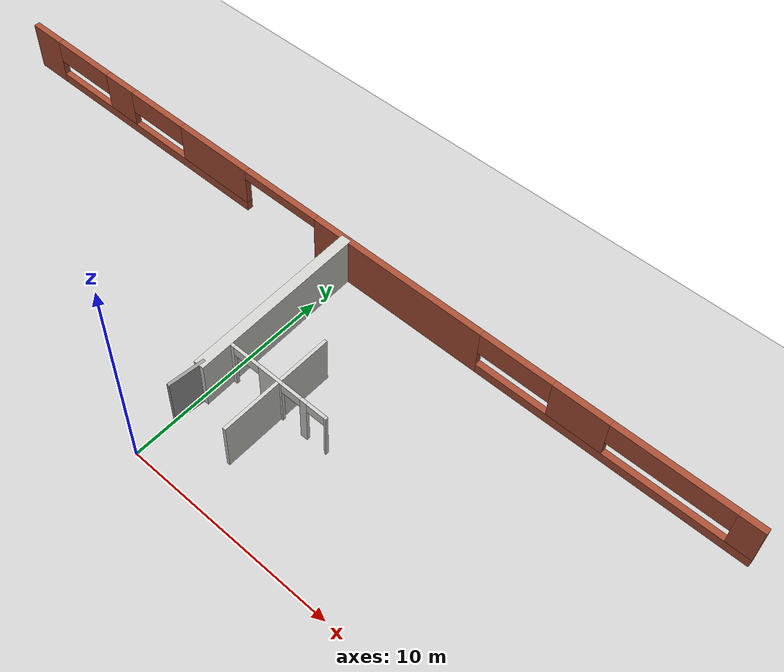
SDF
<sdf version="1.6">
 <world name="default">
  <model name="ground_plane">
   <static>1</static>
   <link name="link">
    <collision name="collision">
     <geometry><plane><normal>0 0 1</normal><size>100 100</size></plane></geometry>
     <surface><friction><ode><mu>100</mu><mu2>50</mu2></ode></friction></surface>
    </collision>
    <visual name="visual">
     <cast_shadows>0</cast_shadows>
     <geometry><plane><normal>0 0 1</normal><size>100 100</size></plane></geometry>
     <material>
      <script><uri>file://media/materials/scripts/gazebo.material</uri><name>Gazebo/Grey</name></script>
     </material>
    </visual>
   </link>
  </model>
  <model name="Building">
   <pose>-1.26631 -0.299272 0 0 -0 0</pose>
   <link name="Wall_18">
    <pose>0.905623 12.3125 0 0 -0 0</pose>
    <visual name="Wall_18_Visual_0">
     <pose>-19.2672 0 1.25 0 -0 0</pose>
     <geometry><box><size>1.86558 0.3 2.5</size></box></geometry>
     <material>
      <script><uri>file://media/materials/scripts/gazebo.material</uri><name>Gazebo/Bricks</name></script>
      <ambient>1 1 1 1</ambient>
     </material>
     <meta><layer>0</layer></meta>
    </visual>
    <collision name="Wall_18_Collision_0">
     <geometry><box><size>1.86558 0.3 2.5</size></box></geometry>
     <pose>-19.2672 0 1.25 0 -0 0</pose>
    </collision>
    <visual name="Wall_18_Visual_1">
     <pose>3.08951 0 1.25 0 -0 0</pose>
     <geometry><box><size>8.93043 0.3 2.5</size></box></geometry>
     <material>
      <script><uri>file://media/materials/scripts/gazebo.material</uri><name>Gazebo/Bricks</name></script>
      <ambient>1 1 1 1</ambient>
     </material>
     <meta><layer>0</layer></meta>
    </visual>
    <collision name="Wall_18_Collision_1">
     <geometry><box><size>8.93043 0.3 2.5</size></box></geometry>
     <pose>3.08951 0 1.25 0 -0 0</pose>
    </collision>
    <visual name="Wall_18_Visual_2">
     <pose>-11.9358 0 0.25 0 -0 0</pose>
     <geometry><box><size>12.7972 0.3 0.5</size></box></geometry>
     <material>
      <script><uri>file://media/materials/scripts/gazebo.material</uri><name>Gazebo/Bricks</name></script>
      <ambient>1 1 1 1</ambient>
     </material>
     <meta><layer>0</layer></meta>
    </visual>
    <collision name="Wall_18_Collision_2">
     <geometry><box><size>12.7972 0.3 0.5</size></box></geometry>
     <pose>-11.9358 0 0.25 0 -0 0</pose>
    </collision>
    <visual name="Wall_18_Visual_3">
     <pose>13.8774 0 0.25 0 -0 0</pose>
     <geometry><box><size>12.6453 0.3 0.5</size></box></geometry>
     <material>
      <script><uri>file://media/materials/scripts/gazebo.material</uri><name>Gazebo/Bricks</name></script>
      <ambient>1 1 1 1</ambient>
     </material>
     <meta><layer>0</layer></meta>
    </visual>
    <collision name="Wall_18_Collision_3">
     <geometry><box><size>12.6453 0.3 0.5</size></box></geometry>
     <pose>13.8774 0 0.25 0 -0 0</pose>
    </collision>
    <visual name="Wall_18_Visual_4">
     <pose>-13.9321 0 1.5 0 -0 0</pose>
     <geometry><box><size>1.8072 0.3 2</size></box></geometry>
     <material>
      <script><uri>file://media/materials/scripts/gazebo.material</uri><name>Gazebo/Bricks</name></script>
      <ambient>1 1 1 1</ambient>
     </material>
     <meta><layer>0</layer></meta>
    </visual>
    <collision name="Wall_18_Collision_4">
     <geometry><box><size>1.8072 0.3 2</size></box></geometry>
     <pose>-13.9321 0 1.5 0 -0 0</pose>
    </collision>
    <visual name="Wall_18_Visual_5">
     <pose>-7.60468 0 1.5 0 -0 0</pose>
     <geometry><box><size>4.135 0.3 2</size></box></geometry>
     <material>
      <script><uri>file://media/materials/scripts/gazebo.material</uri><name>Gazebo/Bricks</name></script>
      <ambient>1 1 1 1</ambient>
     </material>
     <meta><layer>0</layer></meta>
    </visual>
    <collision name="Wall_18_Collision_5">
     <geometry><box><size>4.135 0.3 2</size></box></geometry>
     <pose>-7.60468 0 1.5 0 -0 0</pose>
    </collision>
    <visual name="Wall_18_Visual_6">
     <pose>-7.60468 0 1.5 0 -0 0</pose>
     <geometry><box><size>4.135 0.3 2</size></box></geometry>
     <material>
      <script><uri>file://media/materials/scripts/gazebo.material</uri><name>Gazebo/Bricks</name></script>
      <ambient>1 1 1 1</ambient>
     </material>
     <meta><layer>0</layer></meta>
    </visual>
    <collision name="Wall_18_Collision_6">
     <geometry><box><size>4.135 0.3 2</size></box></geometry>
     <pose>-7.60468 0 1.5 0 -0 0</pose>
    </collision>
    <visual name="Wall_18_Visual_7">
     <pose>12.3457 0 1.5 0 -0 0</pose>
     <geometry><box><size>2.62855 0.3 2</size></box></geometry>
     <material>
      <script><uri>file://media/materials/scripts/gazebo.material</uri><name>Gazebo/Bricks</name></script>
      <ambient>1 1 1 1</ambient>
     </material>
     <meta><layer>0</layer></meta>
    </visual>
    <collision name="Wall_18_Collision_7">
     <geometry><box><size>2.62855 0.3 2</size></box></geometry>
     <pose>12.3457 0 1.5 0 -0 0</pose>
    </collision>
    <visual name="Wall_18_Visual_8">
     <pose>19.6307 0 1.5 0 -0 0</pose>
     <geometry><box><size>1.13859 0.3 2</size></box></geometry>
     <material>
      <script><uri>file://media/materials/scripts/gazebo.material</uri><name>Gazebo/Bricks</name></script>
      <ambient>1 1 1 1</ambient>
     </material>
     <meta><layer>0</layer></meta>
    </visual>
    <collision name="Wall_18_Collision_8">
     <geometry><box><size>1.13859 0.3 2</size></box></geometry>
     <pose>19.6307 0 1.5 0 -0 0</pose>
    </collision>
    <visual name="Wall_18_Visual_9">
     <pose>-16.5851 0 1.9 0 -0 0</pose>
     <geometry><box><size>3.49867 0.3 1.2</size></box></geometry>
     <material>
      <script><uri>file://media/materials/scripts/gazebo.material</uri><name>Gazebo/Bricks</name></script>
      <ambient>1 1 1 1</ambient>
     </material>
     <meta><layer>0</layer></meta>
    </visual>
    <collision name="Wall_18_Collision_9">
     <geometry><box><size>3.49867 0.3 1.2</size></box></geometry>
     <pose>-16.5851 0 1.9 0 -0 0</pose>
    </collision>
    <visual name="Wall_18_Visual_10">
     <pose>9.29306 0 1.9 0 -0 0</pose>
     <geometry><box><size>3.47667 0.3 1.2</size></box></geometry>
     <material>
      <script><uri>file://media/materials/scripts/gazebo.material</uri><name>Gazebo/Bricks</name></script>
      <ambient>1 1 1 1</ambient>
     </material>
     <meta><layer>0</layer></meta>
    </visual>
    <collision name="Wall_18_Collision_10">
     <geometry><box><size>3.47667 0.3 1.2</size></box></geometry>
     <pose>9.29306 0 1.9 0 -0 0</pose>
    </collision>
    <visual name="Wall_18_Visual_11">
     <pose>-11.3504 0 1.9 0 -0 0</pose>
     <geometry><box><size>3.35637 0.3 1.2</size></box></geometry>
     <material>
      <script><uri>file://media/materials/scripts/gazebo.material</uri><name>Gazebo/Bricks</name></script>
      <ambient>1 1 1 1</ambient>
     </material>
     <meta><layer>0</layer></meta>
    </visual>
    <collision name="Wall_18_Collision_11">
     <geometry><box><size>3.35637 0.3 1.2</size></box></geometry>
     <pose>-11.3504 0 1.9 0 -0 0</pose>
    </collision>
    <visual name="Wall_18_Visual_12">
     <pose>16.3607 0 1.9 0 -0 0</pose>
     <geometry><box><size>5.40147 0.3 1.2</size></box></geometry>
     <material>
      <script><uri>file://media/materials/scripts/gazebo.material</uri><name>Gazebo/Bricks</name></script>
      <ambient>1 1 1 1</ambient>
     </material>
     <meta><layer>0</layer></meta>
    </visual>
    <collision name="Wall_18_Collision_12">
     <geometry><box><size>5.40147 0.3 1.2</size></box></geometry>
     <pose>16.3607 0 1.9 0 -0 0</pose>
    </collision>
    <visual name="Wall_18_Visual_13">
     <pose>-3.45644 0 2.25 0 -0 0</pose>
     <geometry><box><size>4.16148 0.3 0.5</size></box></geometry>
     <material>
      <script><uri>file://media/materials/scripts/gazebo.material</uri><name>Gazebo/Bricks</name></script>
      <ambient>1 1 1 1</ambient>
     </material>
     <meta><layer>0</layer></meta>
    </visual>
    <collision name="Wall_18_Collision_13">
     <geometry><box><size>4.16148 0.3 0.5</size></box></geometry>
     <pose>-3.45644 0 2.25 0 -0 0</pose>
    </collision>
    <visual name="Wall_18_Visual_14">
     <pose>-3.45644 0 2.25 0 -0 0</pose>
     <geometry><box><size>4.16148 0.3 0.5</size></box></geometry>
     <material>
      <script><uri>file://media/materials/scripts/gazebo.material</uri><name>Gazebo/Bricks</name></script>
      <ambient>1 1 1 1</ambient>
     </material>
     <meta><layer>0</layer></meta>
    </visual>
    <collision name="Wall_18_Collision_14">
     <geometry><box><size>4.16148 0.3 0.5</size></box></geometry>
     <pose>-3.45644 0 2.25 0 -0 0</pose>
    </collision>
   </link>
   <link name="Wall_48">
    <collision name="Wall_48_Collision">
     <geometry><box><size>8.59954 0.5 2.5</size></box></geometry>
     <pose>0 0 1.25 0 -0 0</pose>
    </collision>
    <visual name="Wall_48_Visual">
     <pose>0 0 1.25 0 -0 0</pose>
     <geometry><box><size>8.59954 0.5 2.5</size></box></geometry>
     <material>
      <script><uri>file://media/materials/scripts/gazebo.material</uri><name>Gazebo/CeilingTiled</name></script>
      <ambient>1 1 1 1</ambient>
     </material>
     <meta><layer>0</layer></meta>
    </visual>
    <pose>1.325 8.04773 0 0 -0 1.5899</pose>
   </link>
   <link name="Wall_76">
    <collision name="Wall_76_Collision">
     <geometry><box><size>1.75952 0.15 2.5</size></box></geometry>
     <pose>0 0 1.25 0 -0 0</pose>
    </collision>
    <visual name="Wall_76_Visual">
     <pose>0 0 1.25 0 -0 0</pose>
     <geometry><box><size>1.75952 0.15 2.5</size></box></geometry>
     <material>
      <script><uri>file://media/materials/scripts/gazebo.material</uri><name>Gazebo/Grey</name></script>
      <ambient>1 1 1 1</ambient>
     </material>
     <meta><layer>0</layer></meta>
    </visual>
    <pose>1.32499 3.19767 0 0 0 -1.66712</pose>
   </link>
   <link name="Wall_84">
    <collision name="Wall_84_Collision">
     <geometry><box><size>5.5 0.15 2.5</size></box></geometry>
     <pose>0 0 1.25 0 -0 0</pose>
    </collision>
    <visual name="Wall_84_Visual">
     <pose>0 0 1.25 0 -0 0</pose>
     <geometry><box><size>5.5 0.15 2.5</size></box></geometry>
     <material>
      <script><uri>file://media/materials/scripts/gazebo.material</uri><name>Gazebo/CeilingTiled</name></script>
      <ambient>1 1 1 1</ambient>
     </material>
     <meta><layer>0</layer></meta>
    </visual>
    <pose>4.2046 5.15734 0 0 0 -1.5708</pose>
   </link>
   <link name="Wall_86">
    <pose>3.93226 5.30604 0 0 -0 0</pose>
    <visual name="Wall_86_Visual_0">
     <pose>-2.44464 0 1.25 0 -0 0</pose>
     <geometry><box><size>0.610725 0.15 2.5</size></box></geometry>
     <material>
      <script><uri>file://media/materials/scripts/gazebo.material</uri><name>Gazebo/CeilingTiled</name></script>
      <ambient>1 1 1 1</ambient>
     </material>
     <meta><layer>0</layer></meta>
    </visual>
    <collision name="Wall_86_Collision_0">
     <geometry><box><size>0.610725 0.15 2.5</size></box></geometry>
     <pose>-2.44464 0 1.25 0 -0 0</pose>
    </collision>
    <visual name="Wall_86_Visual_1">
     <pose>-0.167477 0 1.25 0 -0 0</pose>
     <geometry><box><size>1.21504 0.15 2.5</size></box></geometry>
     <material>
      <script><uri>file://media/materials/scripts/gazebo.material</uri><name>Gazebo/CeilingTiled</name></script>
      <ambient>1 1 1 1</ambient>
     </material>
     <meta><layer>0</layer></meta>
    </visual>
    <collision name="Wall_86_Collision_1">
     <geometry><box><size>1.21504 0.15 2.5</size></box></geometry>
     <pose>-0.167477 0 1.25 0 -0 0</pose>
    </collision>
    <visual name="Wall_86_Visual_2">
     <pose>1.58216 0 1.25 0 -0 0</pose>
     <geometry><box><size>0.34667 0.15 2.5</size></box></geometry>
     <material>
      <script><uri>file://media/materials/scripts/gazebo.material</uri><name>Gazebo/CeilingTiled</name></script>
      <ambient>1 1 1 1</ambient>
     </material>
     <meta><layer>0</layer></meta>
    </visual>
    <collision name="Wall_86_Collision_2">
     <geometry><box><size>0.34667 0.15 2.5</size></box></geometry>
     <pose>1.58216 0 1.25 0 -0 0</pose>
    </collision>
    <visual name="Wall_86_Visual_3">
     <pose>2.70275 0 1.25 0 -0 0</pose>
     <geometry><box><size>0.094504 0.15 2.5</size></box></geometry>
     <material>
      <script><uri>file://media/materials/scripts/gazebo.material</uri><name>Gazebo/CeilingTiled</name></script>
      <ambient>1 1 1 1</ambient>
     </material>
     <meta><layer>0</layer></meta>
    </visual>
    <collision name="Wall_86_Collision_3">
     <geometry><box><size>0.094504 0.15 2.5</size></box></geometry>
     <pose>2.70275 0 1.25 0 -0 0</pose>
    </collision>
    <visual name="Wall_86_Visual_4">
     <pose>-1.45714 0 2.25 0 -0 0</pose>
     <geometry><box><size>1.36428 0.15 0.5</size></box></geometry>
     <material>
      <script><uri>file://media/materials/scripts/gazebo.material</uri><name>Gazebo/CeilingTiled</name></script>
      <ambient>1 1 1 1</ambient>
     </material>
     <meta><layer>0</layer></meta>
    </visual>
    <collision name="Wall_86_Collision_4">
     <geometry><box><size>1.36428 0.15 0.5</size></box></geometry>
     <pose>-1.45714 0 2.25 0 -0 0</pose>
    </collision>
    <visual name="Wall_86_Visual_5">
     <pose>0.924435 0 2.25 0 -0 0</pose>
     <geometry><box><size>0.968782 0.15 0.5</size></box></geometry>
     <material>
      <script><uri>file://media/materials/scripts/gazebo.material</uri><name>Gazebo/CeilingTiled</name></script>
      <ambient>1 1 1 1</ambient>
     </material>
     <meta><layer>0</layer></meta>
    </visual>
    <collision name="Wall_86_Collision_5">
     <geometry><box><size>0.968782 0.15 0.5</size></box></geometry>
     <pose>0.924435 0 2.25 0 -0 0</pose>
    </collision>
    <visual name="Wall_86_Visual_6">
     <pose>2.2055 0 2.25 0 -0 0</pose>
     <geometry><box><size>0.9 0.15 0.5</size></box></geometry>
     <material>
      <script><uri>file://media/materials/scripts/gazebo.material</uri><name>Gazebo/CeilingTiled</name></script>
      <ambient>1 1 1 1</ambient>
     </material>
     <meta><layer>0</layer></meta>
    </visual>
    <collision name="Wall_86_Collision_6">
     <geometry><box><size>0.9 0.15 0.5</size></box></geometry>
     <pose>2.2055 0 2.25 0 -0 0</pose>
    </collision>
   </link>
   <static>1</static>
  </model>
 </world>
</sdf>
